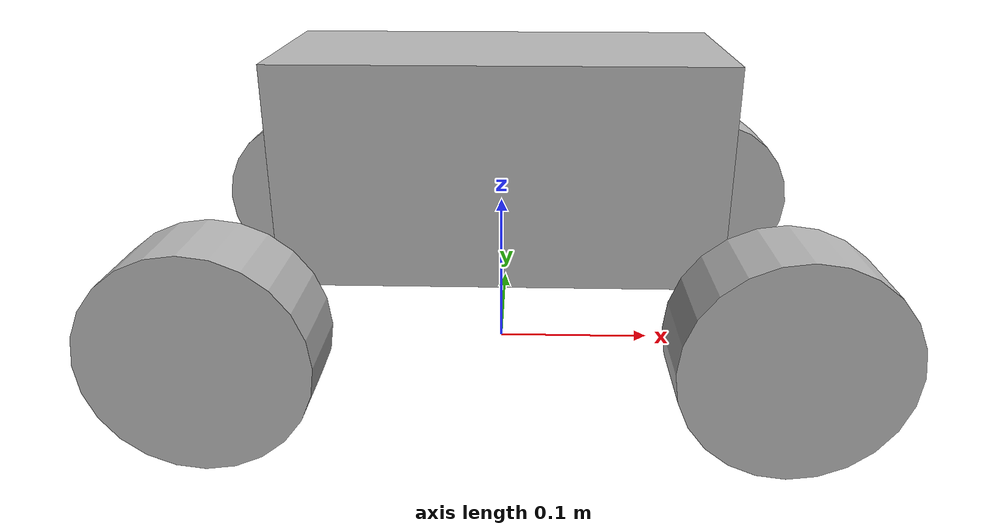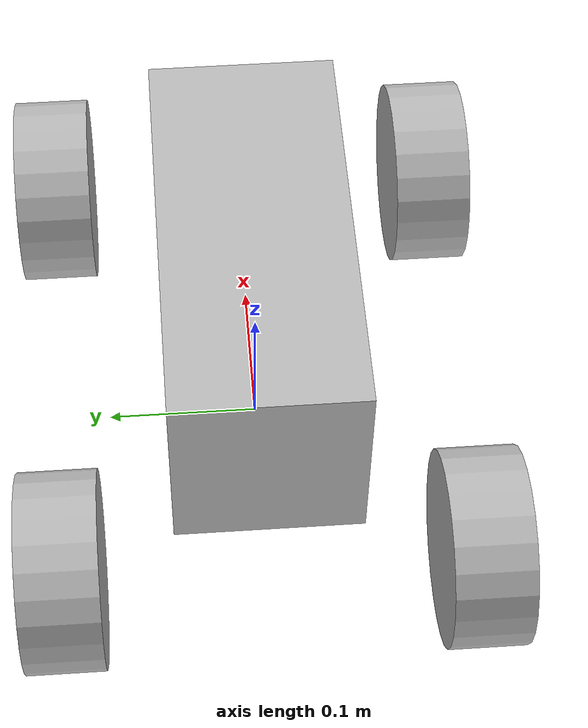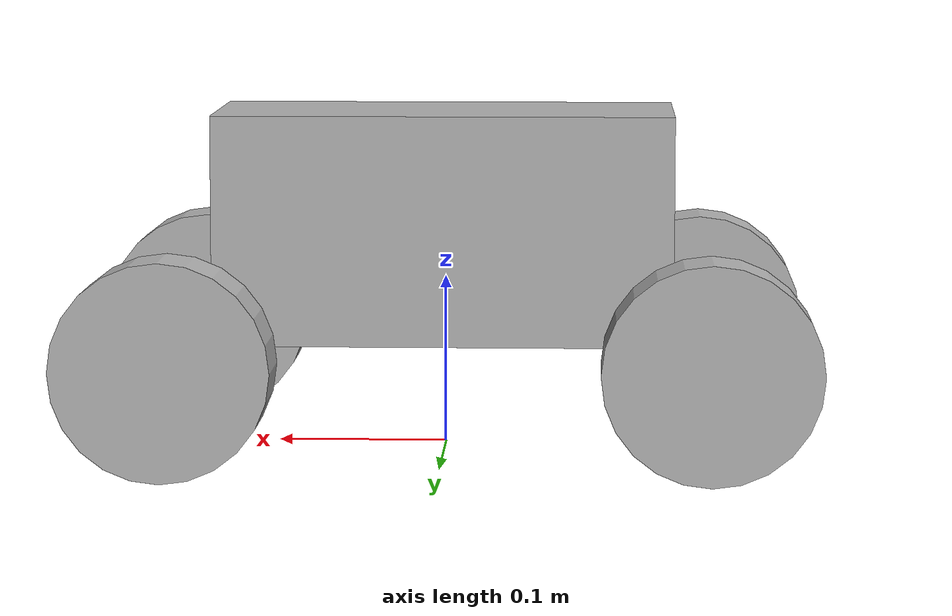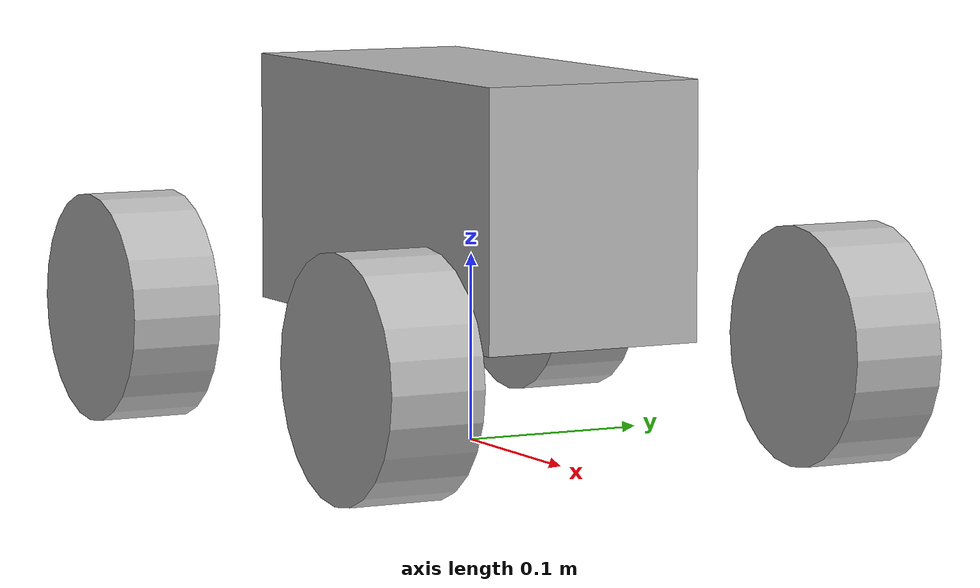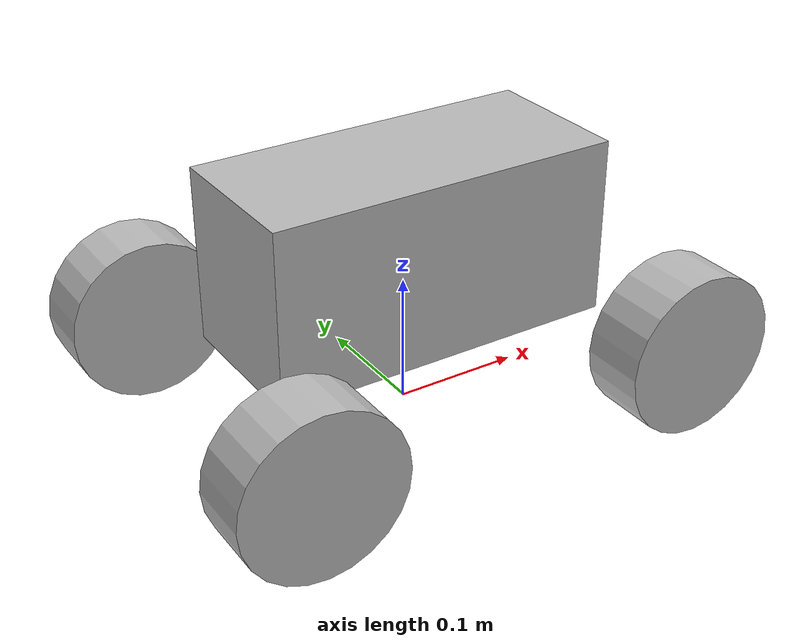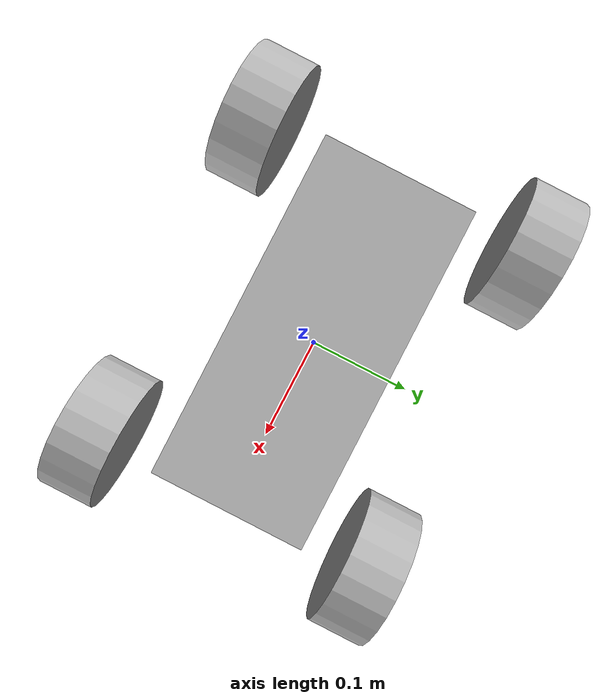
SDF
<?xml version='1.0'?>
<sdf version='1.4'>
  <model name="my_robot">
        <static>false</static>
 <link name='chassis'>
            <pose>0 0 .1325 0 0 0</pose>

            <collision name='collision'>
              <geometry>
                <box>
                  <size>.27 .12 .135</size>
                </box>
              </geometry>
            </collision>

            <visual name='visual'>
              <geometry>
                <box>
                  <size>.27 .12 .135</size>
                </box>
              </geometry>
            </visual>
 	</link>

      <link name="FL_wheel">
        <pose>0.155 0.13 0.0625 0 1.5707 1.5707</pose>
        <collision name="collision">
          <geometry>
            <cylinder>
              <radius>.0625</radius>
              <length>.05</length>
            </cylinder>
          </geometry>
        </collision>
        <visual name="visual">
          <geometry>
            <cylinder>
              <radius>.0625</radius>
              <length>.05</length>
            </cylinder>
          </geometry>
        </visual>
      </link>

 <link name="FR_wheel">
        <pose>0.155 -0.13 0.0625 0 1.5707 1.5707</pose>
        <collision name="collision">
          <geometry>
            <cylinder>
              <radius>.0625</radius>
              <length>.05</length>
            </cylinder>
          </geometry>
        </collision>
        <visual name="visual">
          <geometry>
            <cylinder>
              <radius>.0625</radius>
              <length>.05</length>
            </cylinder>
          </geometry>
        </visual>
      </link>

 <link name="BL_wheel">
        <pose>-0.155 0.13 0.0625 0 1.5707 1.5707</pose>
        <collision name="collision">
          <geometry>
            <cylinder>
              <radius>.0625</radius>
              <length>.05</length>
            </cylinder>
          </geometry>
        </collision>
        <visual name="visual">
          <geometry>
            <cylinder>
              <radius>.0625</radius>
              <length>.05</length>
            </cylinder>
          </geometry>
        </visual>
      </link>

 <link name="BR_wheel">
        <pose>-0.155 -0.13 0.0625 0 1.5707 1.5707</pose>
        <collision name="collision">
          <geometry>
            <cylinder>
              <radius>.0625</radius>
              <length>.05</length>
            </cylinder>
          </geometry>
        </collision>
        <visual name="visual">
          <geometry>
            <cylinder>
              <radius>.0625</radius>
              <length>.05</length>
            </cylinder>
          </geometry>
        </visual>
      </link>

   <joint type="revolute" name="FL_wheel_hinge">
        <pose>0 0 -0.03 0 0 0</pose>
        <child>FL_wheel</child>
        <parent>chassis</parent>
        <axis>
          <xyz>0 1 0</xyz>
        </axis>
      </joint>

      <joint type="revolute" name="FR_wheel_hinge">
        <pose>5 0 0.03 0 0 0</pose>
        <child>FR_wheel</child>
        <parent>chassis</parent>
        <axis>
          <xyz>0 1 0</xyz>
        </axis>
      </joint>

 <joint type="revolute" name="BL_wheel_hinge">
        <pose>0 0 -0.03 0 0 0</pose>
        <child>BL_wheel</child>
        <parent>chassis</parent>
        <axis>
          <xyz>0 1 0</xyz>
        </axis>
      </joint>

      <joint type="revolute" name="BR_wheel_hinge">
        <pose>0 0 0.03 0 0 0</pose>
        <child>BR_wheel</child>
        <parent>chassis</parent>
        <axis>
          <xyz>0 1 0</xyz>
        </axis>
      </joint>

  </model>
</sdf>
